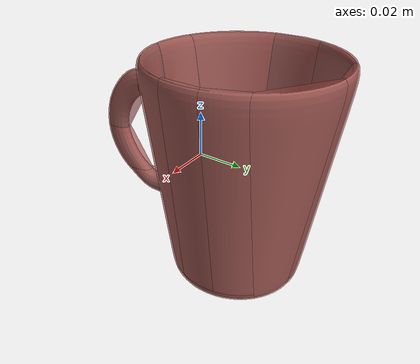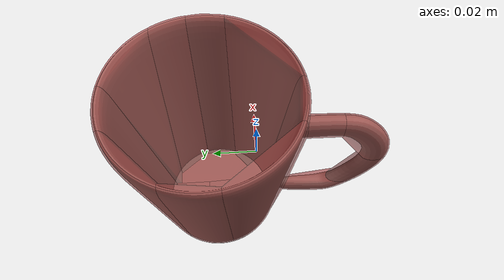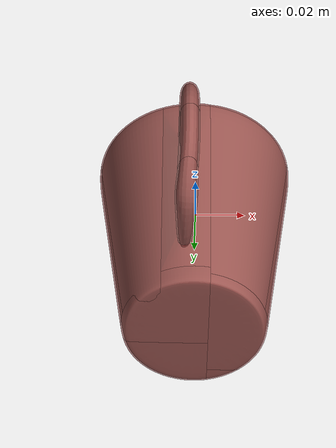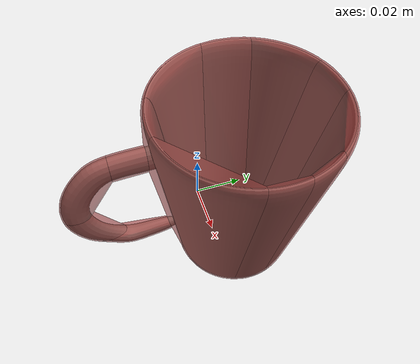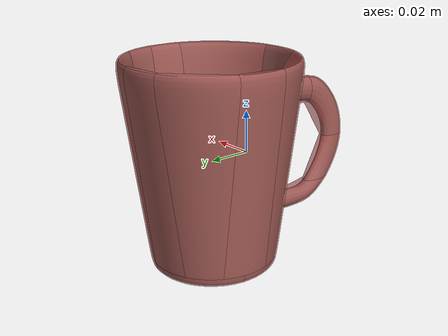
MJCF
<mujoco model="mug_21">
  <asset>
    <mesh file="visual/model_normalized_0.obj" name="model_normalized_0_vis" scale="0.12 0.12 0.12" refquat="-2.220446049250313e-16 0.0 0.0 1.0"/>
    <texture type="2d" name="image0" file="visual/image0.png"/>
    <material name="Material.323" texture="image0" specular="0.5" shininess="0.43348612400000003"/>
    <mesh file="collision/collision_mesh_collision_0.obj" name="mug_collision_mesh_0" scale="0.12 0.12 0.12" refquat="-2.220446049250313e-16 0.0 0.0 1.0"/>
    <mesh file="collision/collision_mesh_collision_1.obj" name="mug_collision_mesh_1" scale="0.12 0.12 0.12" refquat="-2.220446049250313e-16 0.0 0.0 1.0"/>
    <mesh file="collision/collision_mesh_collision_2.obj" name="mug_collision_mesh_2" scale="0.12 0.12 0.12" refquat="-2.220446049250313e-16 0.0 0.0 1.0"/>
    <mesh file="collision/collision_mesh_collision_3.obj" name="mug_collision_mesh_3" scale="0.12 0.12 0.12" refquat="-2.220446049250313e-16 0.0 0.0 1.0"/>
    <mesh file="collision/collision_mesh_collision_4.obj" name="mug_collision_mesh_4" scale="0.12 0.12 0.12" refquat="-2.220446049250313e-16 0.0 0.0 1.0"/>
    <mesh file="collision/collision_mesh_collision_5.obj" name="mug_collision_mesh_5" scale="0.12 0.12 0.12" refquat="-2.220446049250313e-16 0.0 0.0 1.0"/>
    <mesh file="collision/collision_mesh_collision_6.obj" name="mug_collision_mesh_6" scale="0.12 0.12 0.12" refquat="-2.220446049250313e-16 0.0 0.0 1.0"/>
    <mesh file="collision/collision_mesh_collision_7.obj" name="mug_collision_mesh_7" scale="0.12 0.12 0.12" refquat="-2.220446049250313e-16 0.0 0.0 1.0"/>
    <mesh file="collision/collision_mesh_collision_8.obj" name="mug_collision_mesh_8" scale="0.12 0.12 0.12" refquat="-2.220446049250313e-16 0.0 0.0 1.0"/>
    <mesh file="collision/collision_mesh_collision_9.obj" name="mug_collision_mesh_9" scale="0.12 0.12 0.12" refquat="-2.220446049250313e-16 0.0 0.0 1.0"/>
    <mesh file="collision/collision_mesh_collision_10.obj" name="mug_collision_mesh_10" scale="0.12 0.12 0.12" refquat="-2.220446049250313e-16 0.0 0.0 1.0"/>
    <mesh file="collision/collision_mesh_collision_11.obj" name="mug_collision_mesh_11" scale="0.12 0.12 0.12" refquat="-2.220446049250313e-16 0.0 0.0 1.0"/>
    <mesh file="collision/collision_mesh_collision_12.obj" name="mug_collision_mesh_12" scale="0.12 0.12 0.12" refquat="-2.220446049250313e-16 0.0 0.0 1.0"/>
    <mesh file="collision/collision_mesh_collision_13.obj" name="mug_collision_mesh_13" scale="0.12 0.12 0.12" refquat="-2.220446049250313e-16 0.0 0.0 1.0"/>
    <mesh file="collision/collision_mesh_collision_14.obj" name="mug_collision_mesh_14" scale="0.12 0.12 0.12" refquat="-2.220446049250313e-16 0.0 0.0 1.0"/>
    <mesh file="collision/collision_mesh_collision_15.obj" name="mug_collision_mesh_15" scale="0.12 0.12 0.12" refquat="-2.220446049250313e-16 0.0 0.0 1.0"/>
  </asset>
  <default>
    <default class="region">
      <geom group="1" conaffinity="0" contype="0" rgba="0 1 0 0"/>
    </default>
    <default class="collision">
      <geom group="0" rgba="0.5 0 0 0.5" density="1000.0"/>
    </default>
  </default>
  <worldbody>
    <body>
      <body name="object">
        <geom solimp="0.998 0.998 0.001" solref="0.001 1" density="100" friction="0.95 0.3 0.1" type="mesh" mesh="model_normalized_0_vis" conaffinity="0" contype="0" group="1" material="Material.323"/>
        <geom class="region" name="reg_bbox" type="box" pos="-5.6999993195416816e-08 8.95967893192262e-05 -0.00010754400000000164" size="0.04041026698272021 0.060544699182508564 0.0483123552"/>
        <geom mesh="mug_collision_mesh_0" type="mesh" class="collision"/>
        <geom mesh="mug_collision_mesh_1" type="mesh" class="collision"/>
        <geom mesh="mug_collision_mesh_2" type="mesh" class="collision"/>
        <geom mesh="mug_collision_mesh_3" type="mesh" class="collision"/>
        <geom mesh="mug_collision_mesh_4" type="mesh" class="collision"/>
        <geom mesh="mug_collision_mesh_5" type="mesh" class="collision"/>
        <geom mesh="mug_collision_mesh_6" type="mesh" class="collision"/>
        <geom mesh="mug_collision_mesh_7" type="mesh" class="collision"/>
        <geom mesh="mug_collision_mesh_8" type="mesh" class="collision"/>
        <geom mesh="mug_collision_mesh_9" type="mesh" class="collision"/>
        <geom mesh="mug_collision_mesh_10" type="mesh" class="collision"/>
        <geom mesh="mug_collision_mesh_11" type="mesh" class="collision"/>
        <geom mesh="mug_collision_mesh_12" type="mesh" class="collision"/>
        <geom mesh="mug_collision_mesh_13" type="mesh" class="collision"/>
        <geom mesh="mug_collision_mesh_14" type="mesh" class="collision"/>
        <geom mesh="mug_collision_mesh_15" type="mesh" class="collision"/>
        <geom rgba="0 0 0 0" size="0.036 0.012" pos="0 0.020 0.027" type="cylinder" name="liquid" class="region"/>
        <geom rgba="0 0 0 0 " size="0.026 0.0455" pos="0 0.02 0.002" type="cylinder" name="reg_int" class="region"/>
      </body>
    </body>
  </worldbody>
</mujoco>
